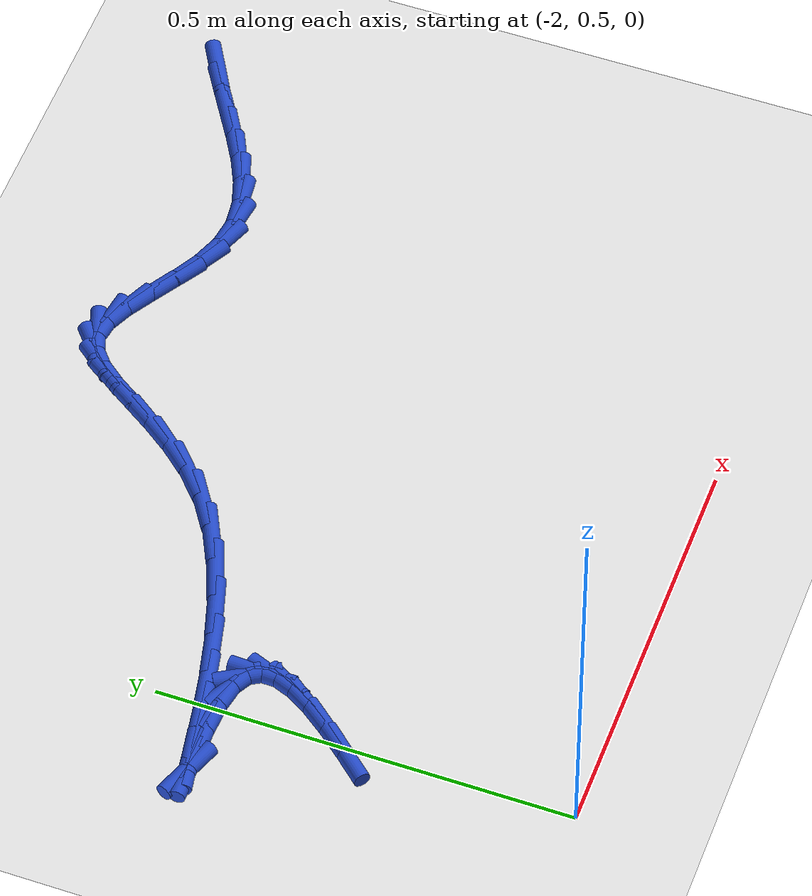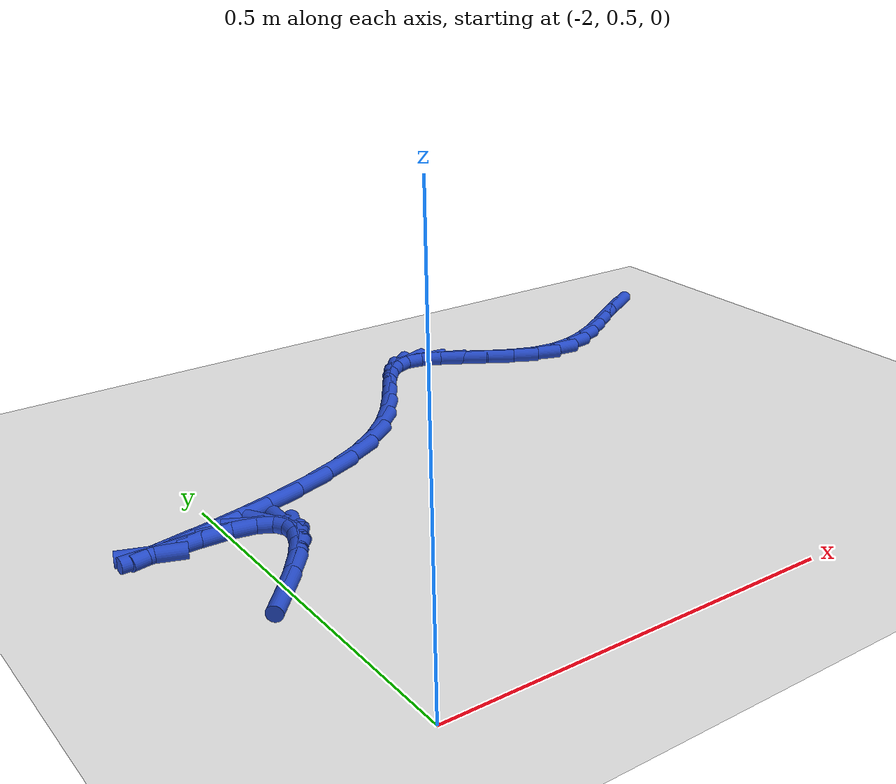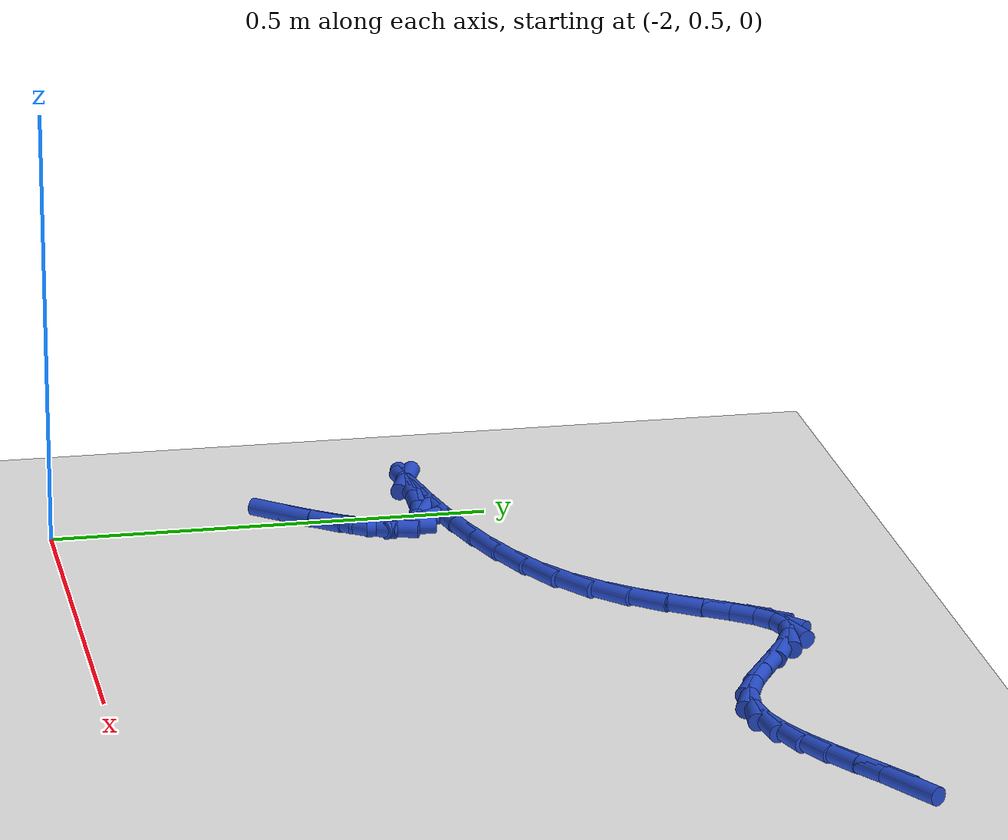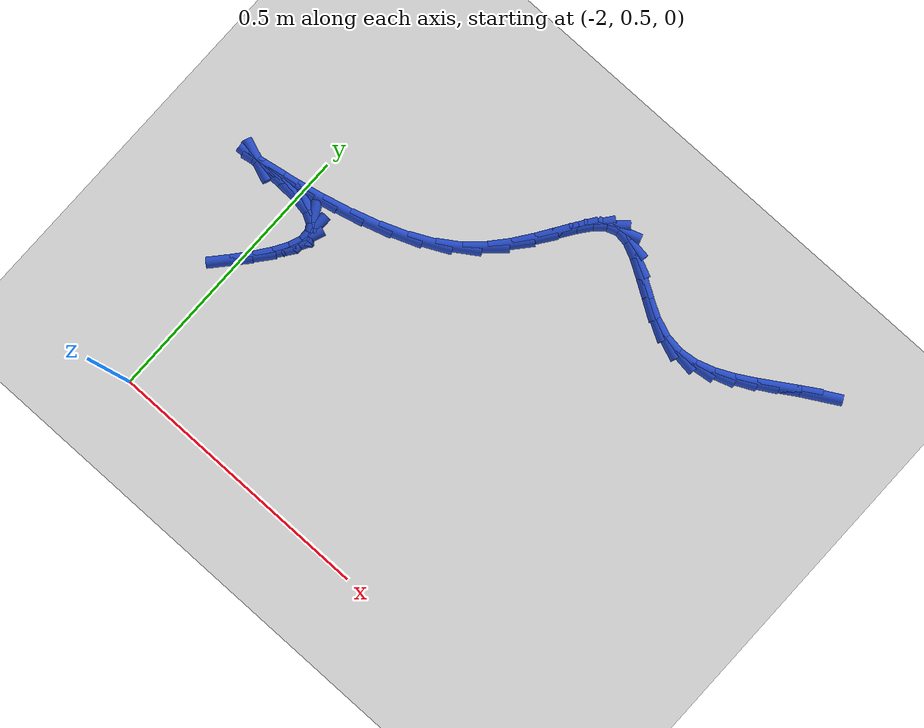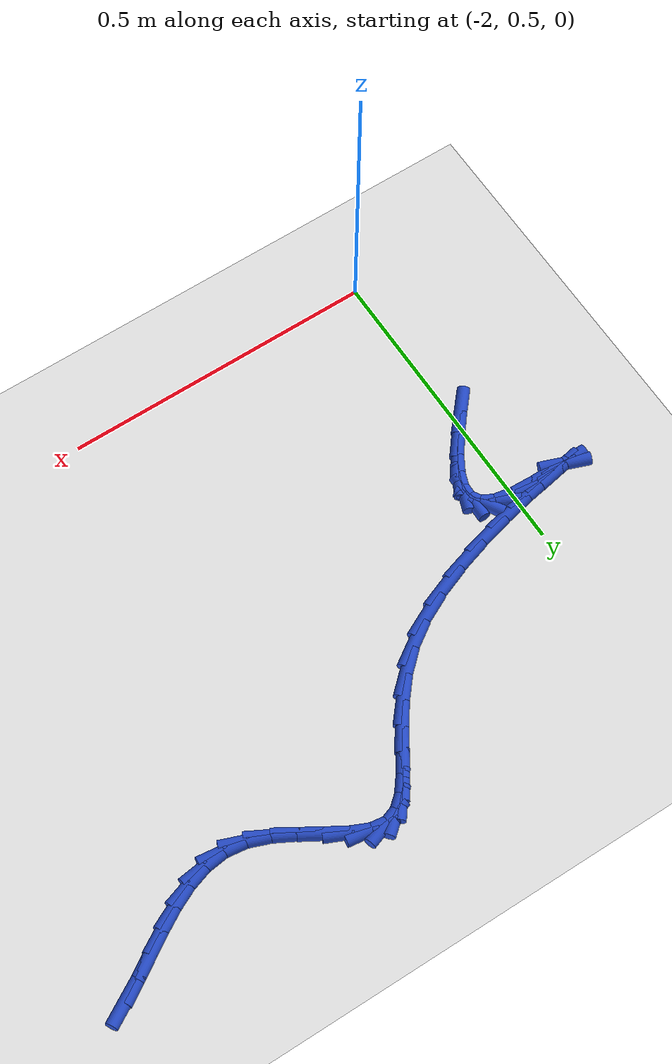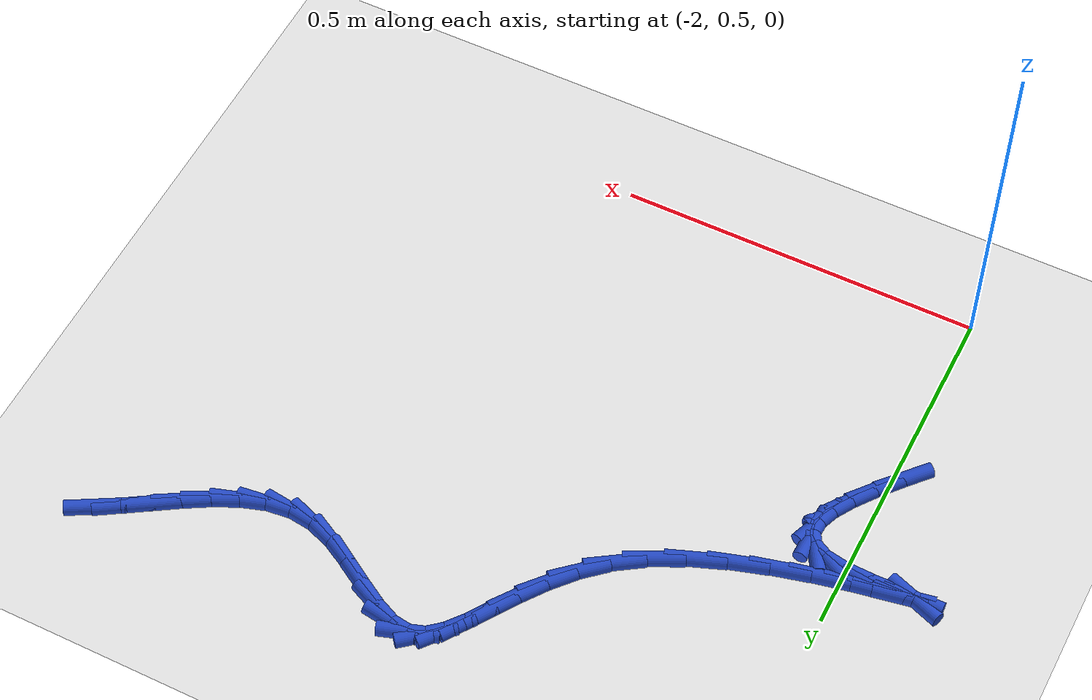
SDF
<sdf version="1.6">
 <world name="default">
  <model name="ground_plane">
   <static>1</static>
   <link name="link">
    <collision name="collision">
     <geometry><plane><normal>0 0 1</normal><size>100 100</size></plane></geometry>
     <surface><friction><ode><mu>100</mu><mu2>50</mu2></ode></friction></surface>
    </collision>
    <visual name="visual">
     <cast_shadows>0</cast_shadows>
     <geometry><plane><normal>0 0 1</normal><size>100 100</size></plane></geometry>
     <material>
      <script><uri>file://media/materials/scripts/gazebo.material</uri><name>Gazebo/WhiteGlow</name></script>
     </material>
    </visual>
   </link>
  </model>
  <model name="line">
   <link name="link_65">
    <pose>-1.1144820364992036 1.2662011421752153 0.01 0 1.57 0.517733047162859</pose>
    <collision name="collision">
     <geometry><cylinder><radius>0.01</radius><length>0.08</length></cylinder></geometry>
    </collision>
    <visual name="visual">
     <material>
      <script><name>Gazebo/Blue</name><uri>file://media/materials/scripts/gazebo.material</uri></script>
     </material>
     <geometry><cylinder><radius>0.01</radius><length>0.08</length></cylinder></geometry>
    </visual>
   </link>
   <link name="link_66">
    <pose>-1.1452241834638777 1.2486917800372783 0.01 0 1.57 0.5622440133853116</pose>
    <collision name="collision">
     <geometry><cylinder><radius>0.01</radius><length>0.08</length></cylinder></geometry>
    </collision>
    <visual name="visual">
     <material>
      <script><name>Gazebo/Blue</name><uri>file://media/materials/scripts/gazebo.material</uri></script>
     </material>
     <geometry><cylinder><radius>0.01</radius><length>0.08</length></cylinder></geometry>
    </visual>
   </link>
   <link name="link_67">
    <pose>-1.1765304299376818 1.228966340176711 0.01 0 1.57 0.5646828335004401</pose>
    <collision name="collision">
     <geometry><cylinder><radius>0.01</radius><length>0.08</length></cylinder></geometry>
    </collision>
    <visual name="visual">
     <material>
      <script><name>Gazebo/Blue</name><uri>file://media/materials/scripts/gazebo.material</uri></script>
     </material>
     <geometry><cylinder><radius>0.01</radius><length>0.08</length></cylinder></geometry>
    </visual>
   </link>
   <link name="link_68">
    <pose>-1.2083562331994264 1.2088049392967057 0.01 0 1.57 0.5274991329047906</pose>
    <collision name="collision">
     <geometry><cylinder><radius>0.01</radius><length>0.08</length></cylinder></geometry>
    </collision>
    <visual name="visual">
     <material>
      <script><name>Gazebo/Blue</name><uri>file://media/materials/scripts/gazebo.material</uri></script>
     </material>
     <geometry><cylinder><radius>0.01</radius><length>0.08</length></cylinder></geometry>
    </visual>
   </link>
   <link name="link_69">
    <pose>-1.2406570505279226 1.189987694100452 0.01 0 1.57 0.44707178841849415</pose>
    <collision name="collision">
     <geometry><cylinder><radius>0.01</radius><length>0.08</length></cylinder></geometry>
    </collision>
    <visual name="visual">
     <material>
      <script><name>Gazebo/Blue</name><uri>file://media/materials/scripts/gazebo.material</uri></script>
     </material>
     <geometry><cylinder><radius>0.01</radius><length>0.08</length></cylinder></geometry>
    </visual>
   </link>
   <link name="link_70">
    <pose>-1.2733883392019822 1.1742947212911408 0.01 0 1.57 0.3149278480841404</pose>
    <collision name="collision">
     <geometry><cylinder><radius>0.01</radius><length>0.08</length></cylinder></geometry>
    </collision>
    <visual name="visual">
     <material>
      <script><name>Gazebo/Blue</name><uri>file://media/materials/scripts/gazebo.material</uri></script>
     </material>
     <geometry><cylinder><radius>0.01</radius><length>0.08</length></cylinder></geometry>
    </visual>
   </link>
   <link name="link_71">
    <pose>-1.3065055565004158 1.163506137571964 0.01 0 1.57 0.12205167924323047</pose>
    <collision name="collision">
     <geometry><cylinder><radius>0.01</radius><length>0.08</length></cylinder></geometry>
    </collision>
    <visual name="visual">
     <material>
      <script><name>Gazebo/Blue</name><uri>file://media/materials/scripts/gazebo.material</uri></script>
     </material>
     <geometry><cylinder><radius>0.01</radius><length>0.08</length></cylinder></geometry>
    </visual>
   </link>
   <link name="link_72">
    <pose>-1.3399641597020344 1.1594020596461119 0.01 0 1.57 -0.12807562621028096</pose>
    <collision name="collision">
     <geometry><cylinder><radius>0.01</radius><length>0.08</length></cylinder></geometry>
    </collision>
    <visual name="visual">
     <material>
      <script><name>Gazebo/Blue</name><uri>file://media/materials/scripts/gazebo.material</uri></script>
     </material>
     <geometry><cylinder><radius>0.01</radius><length>0.08</length></cylinder></geometry>
    </visual>
   </link>
   <link name="link_73">
    <pose>-1.3737179803090018 1.1637488949661683 0.01 0 1.57 -0.3638847517836319</pose>
    <collision name="collision">
     <geometry><cylinder><radius>0.01</radius><length>0.08</length></cylinder></geometry>
    </collision>
    <visual name="visual">
     <material>
      <script><name>Gazebo/Blue</name><uri>file://media/materials/scripts/gazebo.material</uri></script>
     </material>
     <geometry><cylinder><radius>0.01</radius><length>0.08</length></cylinder></geometry>
    </visual>
   </link>
   <link name="link_74">
    <pose>-1.4075203489981505 1.176622341461238 0.01 0 1.57 -0.5007097658309129</pose>
    <collision name="collision">
     <geometry><cylinder><radius>0.01</radius><length>0.08</length></cylinder></geometry>
    </collision>
    <visual name="visual">
     <material>
      <script><name>Gazebo/Blue</name><uri>file://media/materials/scripts/gazebo.material</uri></script>
     </material>
     <geometry><cylinder><radius>0.01</radius><length>0.08</length></cylinder></geometry>
    </visual>
   </link>
   <link name="link_75">
    <pose>-1.4407331431873611 1.1947971941747983 0.01 0 1.57 -0.5565023053120994</pose>
    <collision name="collision">
     <geometry><cylinder><radius>0.01</radius><length>0.08</length></cylinder></geometry>
    </collision>
    <visual name="visual">
     <material>
      <script><name>Gazebo/Blue</name><uri>file://media/materials/scripts/gazebo.material</uri></script>
     </material>
     <geometry><cylinder><radius>0.01</radius><length>0.08</length></cylinder></geometry>
    </visual>
   </link>
   <link name="link_76">
    <pose>-1.4726729772668763 1.2146665707594169 0.01 0 1.57 -0.5396079995931111</pose>
    <collision name="collision">
     <geometry><cylinder><radius>0.01</radius><length>0.08</length></cylinder></geometry>
    </collision>
    <visual name="visual">
     <material>
      <script><name>Gazebo/Blue</name><uri>file://media/materials/scripts/gazebo.material</uri></script>
     </material>
     <geometry><cylinder><radius>0.01</radius><length>0.08</length></cylinder></geometry>
    </visual>
   </link>
   <link name="link_77">
    <pose>-1.5026564656269417 1.2326235888676624 0.01 0 1.57 -0.42689408517384475</pose>
    <collision name="collision">
     <geometry><cylinder><radius>0.01</radius><length>0.08</length></cylinder></geometry>
    </collision>
    <visual name="visual">
     <material>
      <script><name>Gazebo/Blue</name><uri>file://media/materials/scripts/gazebo.material</uri></script>
     </material>
     <geometry><cylinder><radius>0.01</radius><length>0.08</length></cylinder></geometry>
    </visual>
   </link>
   <link name="link_78">
    <pose>-1.530000222657801 1.2450613661521046 0.01 0 1.57 -0.1387711086170123</pose>
    <collision name="collision">
     <geometry><cylinder><radius>0.01</radius><length>0.08</length></cylinder></geometry>
    </collision>
    <visual name="visual">
     <material>
      <script><name>Gazebo/Blue</name><uri>file://media/materials/scripts/gazebo.material</uri></script>
     </material>
     <geometry><cylinder><radius>0.01</radius><length>0.08</length></cylinder></geometry>
    </visual>
   </link>
   <link name="link_79">
    <pose>-1.5540374873462004 1.2484186224380387 0.01 0 1.57 0.33006630924108865</pose>
    <collision name="collision">
     <geometry><cylinder><radius>0.01</radius><length>0.08</length></cylinder></geometry>
    </collision>
    <visual name="visual">
     <material>
      <script><name>Gazebo/Blue</name><uri>file://media/materials/scripts/gazebo.material</uri></script>
     </material>
     <geometry><cylinder><radius>0.01</radius><length>0.08</length></cylinder></geometry>
    </visual>
   </link>
   <link name="link_80">
    <pose>-1.574882738573187 1.241277061086924 0.01 0 1.57 0.7045356666216976</pose>
    <collision name="collision">
     <geometry><cylinder><radius>0.01</radius><length>0.08</length></cylinder></geometry>
    </collision>
    <visual name="visual">
     <material>
      <script><name>Gazebo/Blue</name><uri>file://media/materials/scripts/gazebo.material</uri></script>
     </material>
     <geometry><cylinder><radius>0.01</radius><length>0.08</length></cylinder></geometry>
    </visual>
   </link>
   <link name="link_81">
    <pose>-1.5937511244191143 1.2252375809596787 0.01 0 1.57 0.9039625962985088</pose>
    <collision name="collision">
     <geometry><cylinder><radius>0.01</radius><length>0.08</length></cylinder></geometry>
    </collision>
    <visual name="visual">
     <material>
      <script><name>Gazebo/Blue</name><uri>file://media/materials/scripts/gazebo.material</uri></script>
     </material>
     <geometry><cylinder><radius>0.01</radius><length>0.08</length></cylinder></geometry>
    </visual>
   </link>
   <link name="link_82">
    <pose>-1.6119406660209876 1.2021284062206226 0.01 0 1.57 0.9850366174721995</pose>
    <collision name="collision">
     <geometry><cylinder><radius>0.01</radius><length>0.08</length></cylinder></geometry>
    </collision>
    <visual name="visual">
     <material>
      <script><name>Gazebo/Blue</name><uri>file://media/materials/scripts/gazebo.material</uri></script>
     </material>
     <geometry><cylinder><radius>0.01</radius><length>0.08</length></cylinder></geometry>
    </visual>
   </link>
   <link name="link_83">
    <pose>-1.6307493845158127 1.173777761034074 0.01 0 1.57 0.992666144466442</pose>
    <collision name="collision">
     <geometry><cylinder><radius>0.01</radius><length>0.08</length></cylinder></geometry>
    </collision>
    <visual name="visual">
     <material>
      <script><name>Gazebo/Blue</name><uri>file://media/materials/scripts/gazebo.material</uri></script>
     </material>
     <geometry><cylinder><radius>0.01</radius><length>0.08</length></cylinder></geometry>
    </visual>
   </link>
   <link name="link_84">
    <pose>-1.651475301040595 1.142013869564353 0.01 0 1.57 0.9481586632767482</pose>
    <collision name="collision">
     <geometry><cylinder><radius>0.01</radius><length>0.08</length></cylinder></geometry>
    </collision>
    <visual name="visual">
     <material>
      <script><name>Gazebo/Blue</name><uri>file://media/materials/scripts/gazebo.material</uri></script>
     </material>
     <geometry><cylinder><radius>0.01</radius><length>0.08</length></cylinder></geometry>
    </visual>
   </link>
   <link name="link_85">
    <pose>-1.6754164367323405 1.108664955975778 0.01 0 1.57 0.8608125187405201</pose>
    <collision name="collision">
     <geometry><cylinder><radius>0.01</radius><length>0.08</length></cylinder></geometry>
    </collision>
    <visual name="visual">
     <material>
      <script><name>Gazebo/Blue</name><uri>file://media/materials/scripts/gazebo.material</uri></script>
     </material>
     <geometry><cylinder><radius>0.01</radius><length>0.08</length></cylinder></geometry>
    </visual>
   </link>
   <link name="link_86">
    <pose>-1.7038708127280553 1.0755592444326676 0.01 0 1.57 0.7359537191908339</pose>
    <collision name="collision">
     <geometry><cylinder><radius>0.01</radius><length>0.08</length></cylinder></geometry>
    </collision>
    <visual name="visual">
     <material>
      <script><name>Gazebo/Blue</name><uri>file://media/materials/scripts/gazebo.material</uri></script>
     </material>
     <geometry><cylinder><radius>0.01</radius><length>0.08</length></cylinder></geometry>
    </visual>
   </link>
   <link name="link_87">
    <pose>-1.738136450164745 1.0445249590993424 0.01 0 1.57 0.5847402715789404</pose>
    <collision name="collision">
     <geometry><cylinder><radius>0.01</radius><length>0.08</length></cylinder></geometry>
    </collision>
    <visual name="visual">
     <material>
      <script><name>Gazebo/Blue</name><uri>file://media/materials/scripts/gazebo.material</uri></script>
     </material>
     <geometry><cylinder><radius>0.01</radius><length>0.08</length></cylinder></geometry>
    </visual>
   </link>
   <link name="link_88">
    <pose>-1.7793014718513973 1.0172751711972934 0.01 0 1.57 0.45641825627627886</pose>
    <collision name="collision">
     <geometry><cylinder><radius>0.01</radius><length>0.08</length></cylinder></geometry>
    </collision>
    <visual name="visual">
     <material>
      <script><name>Gazebo/Blue</name><uri>file://media/materials/scripts/gazebo.material</uri></script>
     </material>
     <geometry><cylinder><radius>0.01</radius><length>0.08</length></cylinder></geometry>
    </visual>
   </link>
   <link name="link_89">
    <pose>-1.826163272271808 0.9942662287032147 0.01 0 1.57 0.3649960602178962</pose>
    <collision name="collision">
     <geometry><cylinder><radius>0.01</radius><length>0.08</length></cylinder></geometry>
    </collision>
    <visual name="visual">
     <material>
      <script><name>Gazebo/Blue</name><uri>file://media/materials/scripts/gazebo.material</uri></script>
     </material>
     <geometry><cylinder><radius>0.01</radius><length>0.08</length></cylinder></geometry>
    </visual>
   </link>
   <link name="link_90">
    <pose>-1.876109311054004 0.9751809710605492 0.01 0 1.57 0.29819521365955326</pose>
    <collision name="collision">
     <geometry><cylinder><radius>0.01</radius><length>0.08</length></cylinder></geometry>
    </collision>
    <visual name="visual">
     <material>
      <script><name>Gazebo/Blue</name><uri>file://media/materials/scripts/gazebo.material</uri></script>
     </material>
     <geometry><cylinder><radius>0.01</radius><length>0.08</length></cylinder></geometry>
    </visual>
   </link>
   <link name="link_91">
    <pose>-1.9265064215943568 0.9596909218947589 0.01 0 1.57 0.24828585499506592</pose>
    <collision name="collision">
     <geometry><cylinder><radius>0.01</radius><length>0.08</length></cylinder></geometry>
    </collision>
    <visual name="visual">
     <material>
      <script><name>Gazebo/Blue</name><uri>file://media/materials/scripts/gazebo.material</uri></script>
     </material>
     <geometry><cylinder><radius>0.01</radius><length>0.08</length></cylinder></geometry>
    </visual>
   </link>
   <link name="link_92">
    <pose>-1.974721437289241 0.9474676048313074 0.01 0 1.57 0.2107653712131799</pose>
    <collision name="collision">
     <geometry><cylinder><radius>0.01</radius><length>0.08</length></cylinder></geometry>
    </collision>
    <visual name="visual">
     <material>
      <script><name>Gazebo/Blue</name><uri>file://media/materials/scripts/gazebo.material</uri></script>
     </material>
     <geometry><cylinder><radius>0.01</radius><length>0.08</length></cylinder></geometry>
    </visual>
   </link>
   <link name="link_93">
    <pose>-2.018121191535027 0.9381825434956559 0.01 0 1.57 0.18358487406436422</pose>
    <collision name="collision">
     <geometry><cylinder><radius>0.01</radius><length>0.08</length></cylinder></geometry>
    </collision>
    <visual name="visual">
     <material>
      <script><name>Gazebo/Blue</name><uri>file://media/materials/scripts/gazebo.material</uri></script>
     </material>
     <geometry><cylinder><radius>0.01</radius><length>0.08</length></cylinder></geometry>
    </visual>
   </link>
   <link name="link_94">
    <pose>-2.054072517728089 0.9315072615132668 0.01 0 1.57 0.1682445584674189</pose>
    <collision name="collision">
     <geometry><cylinder><radius>0.01</radius><length>0.08</length></cylinder></geometry>
    </collision>
    <visual name="visual">
     <material>
      <script><name>Gazebo/Blue</name><uri>file://media/materials/scripts/gazebo.material</uri></script>
     </material>
     <geometry><cylinder><radius>0.01</radius><length>0.08</length></cylinder></geometry>
    </visual>
   </link>
   <link name="link_95">
    <pose>-2.0799422492647994 0.9271132825096023 0.01 0 1.57 0.18348171307079422</pose>
    <collision name="collision">
     <geometry><cylinder><radius>0.01</radius><length>0.08</length></cylinder></geometry>
    </collision>
    <visual name="visual">
     <material>
      <script><name>Gazebo/Blue</name><uri>file://media/materials/scripts/gazebo.material</uri></script>
     </material>
     <geometry><cylinder><radius>0.01</radius><length>0.08</length></cylinder></geometry>
    </visual>
   </link>
   <link name="link_96">
    <pose>-2.09309721954153 0.9246721301101252 0.01 0 1.57 -0.35654724427682993</pose>
    <collision name="collision">
     <geometry><cylinder><radius>0.01</radius><length>0.08</length></cylinder></geometry>
    </collision>
    <visual name="visual">
     <material>
      <script><name>Gazebo/Blue</name><uri>file://media/materials/scripts/gazebo.material</uri></script>
     </material>
     <geometry><cylinder><radius>0.01</radius><length>0.08</length></cylinder></geometry>
    </visual>
   </link>
   <link name="link_97">
    <pose>-2.090904261954654 0.9238553279402967 0.01 0 1.57 0.022809819213873376</pose>
    <collision name="collision">
     <geometry><cylinder><radius>0.01</radius><length>0.08</length></cylinder></geometry>
    </collision>
    <visual name="visual">
     <material>
      <script><name>Gazebo/Blue</name><uri>file://media/materials/scripts/gazebo.material</uri></script>
     </material>
     <geometry><cylinder><radius>0.01</radius><length>0.08</length></cylinder></geometry>
    </visual>
   </link>
   <link name="link_98">
    <pose>-2.070899801737573 0.9243117052132487 0.01 0 1.57 0.01670694729718934</pose>
    <collision name="collision">
     <geometry><cylinder><radius>0.01</radius><length>0.08</length></cylinder></geometry>
    </collision>
    <visual name="visual">
     <material>
      <script><name>Gazebo/Blue</name><uri>file://media/materials/scripts/gazebo.material</uri></script>
     </material>
     <geometry><cylinder><radius>0.01</radius><length>0.08</length></cylinder></geometry>
    </visual>
   </link>
   <link name="link_99">
    <pose>-2.036643483488762 0.9248840769716851 0.01 0 1.57 -0.0393448234020642</pose>
    <collision name="collision">
     <geometry><cylinder><radius>0.01</radius><length>0.08</length></cylinder></geometry>
    </collision>
    <visual name="visual">
     <material>
      <script><name>Gazebo/Blue</name><uri>file://media/materials/scripts/gazebo.material</uri></script>
     </material>
     <geometry><cylinder><radius>0.01</radius><length>0.08</length></cylinder></geometry>
    </visual>
   </link>
   <link name="link_100">
    <pose>-1.9992048497292485 0.9234102999831508 0.01 0 1.57 -0.1860295218525203</pose>
    <collision name="collision">
     <geometry><cylinder><radius>0.01</radius><length>0.08</length></cylinder></geometry>
    </collision>
    <visual name="visual">
     <material>
      <script><name>Gazebo/Blue</name><uri>file://media/materials/scripts/gazebo.material</uri></script>
     </material>
     <geometry><cylinder><radius>0.01</radius><length>0.08</length></cylinder></geometry>
    </visual>
   </link>
   <link name="link_101">
    <pose>-1.9694327280277864 0.917807019250894 0.01 0 1.57 -0.5045837227924139</pose>
    <collision name="collision">
     <geometry><cylinder><radius>0.01</radius><length>0.08</length></cylinder></geometry>
    </collision>
    <visual name="visual">
     <material>
      <script><name>Gazebo/Blue</name><uri>file://media/materials/scripts/gazebo.material</uri></script>
     </material>
     <geometry><cylinder><radius>0.01</radius><length>0.08</length></cylinder></geometry>
    </visual>
   </link>
   <link name="link_102">
    <pose>-1.950781528267618 0.9075065362435063 0.01 0 1.57 -1.0422331043784696</pose>
    <collision name="collision">
     <geometry><cylinder><radius>0.01</radius><length>0.08</length></cylinder></geometry>
    </collision>
    <visual name="visual">
     <material>
      <script><name>Gazebo/Blue</name><uri>file://media/materials/scripts/gazebo.material</uri></script>
     </material>
     <geometry><cylinder><radius>0.01</radius><length>0.08</length></cylinder></geometry>
    </visual>
   </link>
   <link name="link_103">
    <pose>-1.9422275587883906 0.8928590426334708 0.01 0 1.57 1.5462707792512813</pose>
    <collision name="collision">
     <geometry><cylinder><radius>0.01</radius><length>0.08</length></cylinder></geometry>
    </collision>
    <visual name="visual">
     <material>
      <script><name>Gazebo/Blue</name><uri>file://media/materials/scripts/gazebo.material</uri></script>
     </material>
     <geometry><cylinder><radius>0.01</radius><length>0.08</length></cylinder></geometry>
    </visual>
   </link>
   <link name="link_104">
    <pose>-1.9426845980599903 0.8742275470324012 0.01 0 1.57 1.2105630807223955</pose>
    <collision name="collision">
     <geometry><cylinder><radius>0.01</radius><length>0.08</length></cylinder></geometry>
    </collision>
    <visual name="visual">
     <material>
      <script><name>Gazebo/Blue</name><uri>file://media/materials/scripts/gazebo.material</uri></script>
     </material>
     <geometry><cylinder><radius>0.01</radius><length>0.08</length></cylinder></geometry>
    </visual>
   </link>
   <link name="link_105">
    <pose>-1.9510664245523008 0.8519750580519105 0.01 0 1.57 1.0328561906504867</pose>
    <collision name="collision">
     <geometry><cylinder><radius>0.01</radius><length>0.08</length></cylinder></geometry>
    </collision>
    <visual name="visual">
     <material>
      <script><name>Gazebo/Blue</name><uri>file://media/materials/scripts/gazebo.material</uri></script>
     </material>
     <geometry><cylinder><radius>0.01</radius><length>0.08</length></cylinder></geometry>
    </visual>
   </link>
   <link name="link_106">
    <pose>-1.9662868167352074 0.8264645843036129 0.01 0 1.57 0.9348027481570739</pose>
    <collision name="collision">
     <geometry><cylinder><radius>0.01</radius><length>0.08</length></cylinder></geometry>
    </collision>
    <visual name="visual">
     <material>
      <script><name>Gazebo/Blue</name><uri>file://media/materials/scripts/gazebo.material</uri></script>
     </material>
     <geometry><cylinder><radius>0.01</radius><length>0.08</length></cylinder></geometry>
    </visual>
   </link>
   <link name="link_107">
    <pose>-1.9872595530785953 0.7980591343991212 0.01 0 1.57 0.8787791472833225</pose>
    <collision name="collision">
     <geometry><cylinder><radius>0.01</radius><length>0.08</length></cylinder></geometry>
    </collision>
    <visual name="visual">
     <material>
      <script><name>Gazebo/Blue</name><uri>file://media/materials/scripts/gazebo.material</uri></script>
     </material>
     <geometry><cylinder><radius>0.01</radius><length>0.08</length></cylinder></geometry>
    </visual>
   </link>
   <link name="link_108">
    <pose>-2.012898412052349 0.7671217169500496 0.01 0 1.57 0.8476938320658963</pose>
    <collision name="collision">
     <geometry><cylinder><radius>0.01</radius><length>0.08</length></cylinder></geometry>
    </collision>
    <visual name="visual">
     <material>
      <script><name>Gazebo/Blue</name><uri>file://media/materials/scripts/gazebo.material</uri></script>
     </material>
     <geometry><cylinder><radius>0.01</radius><length>0.08</length></cylinder></geometry>
    </visual>
   </link>
  </model>
 </world>
</sdf>
